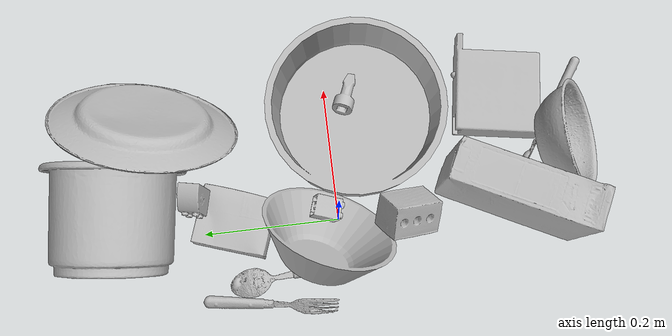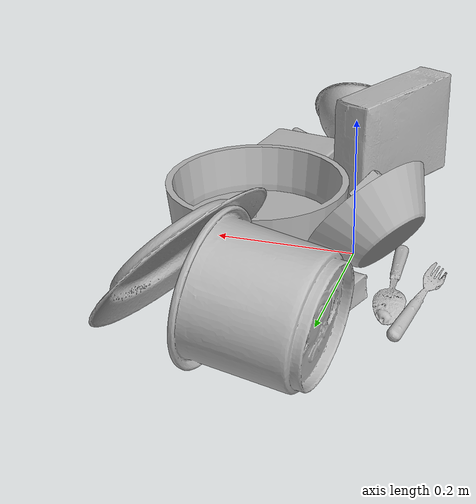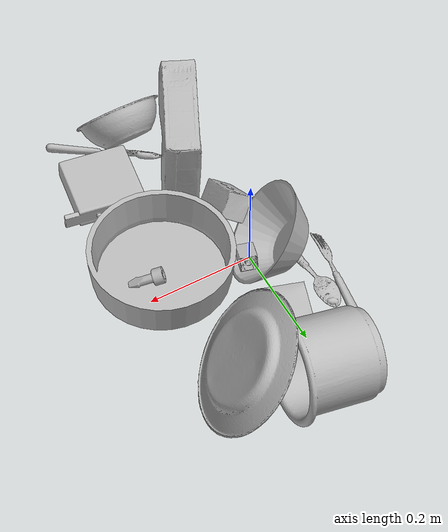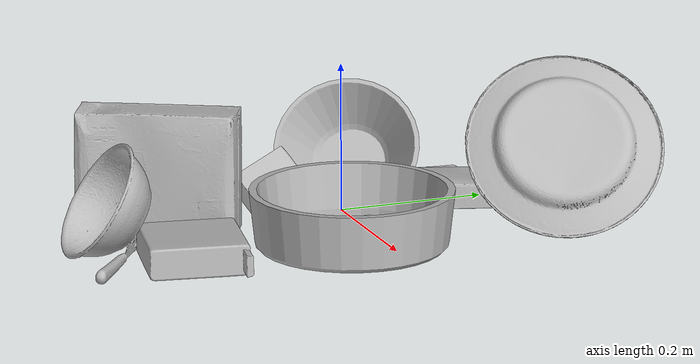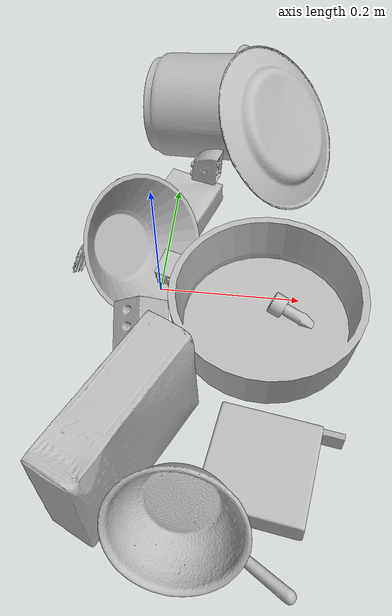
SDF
<sdf version="1.4">
  <world name="default">
    <light name="light1" type="point">
      <pose>0 0 1 0 0 0</pose>
      <diffuse>3 3 3 1</diffuse>
      <specular>3 3 3 1</specular>
    </light>
    <light name="light2" type="point">
      <pose>0 0.5 2 0 0 0</pose>
      <diffuse>1 1 1 1</diffuse>
      <specular>1 1 1 1</specular>
    </light>
    <light name="light3" type="point">
      <pose>0 0.5 2 0 0 0</pose>
      <diffuse>3 3 3 1</diffuse>
      <specular>3 3 3 1</specular>
    </light>
    <scene>
      <ambient>0.7 0.7 0.7</ambient>
    </scene>
    <model name="plate1">
      <link name="link_plate1">
        <collision name="default">
          <geometry>
            <mesh>
              <uri>model://pan_tefal/collision_meshes/collision.obj</uri>
              <scale>1.0 1.0 1.0</scale>
            </mesh>
          </geometry>
          <surface>
            <friction>
              <ode>
                <mu>0.5</mu>
                <mu2>0.5</mu2>
              </ode>
            </friction>
          <contact>
        <ode>
            <max_vel>0</max_vel>
            <min_depth>0.0001</min_depth>
            <kp>1e8</kp>
        </ode>
    </contact></surface>
        </collision>
        <visual name="default">
          <geometry>
            <mesh>
              <uri>model://pan_tefal/visual_meshes/visual.dae</uri>
              <scale>1.0 1.0 1.0</scale>
            </mesh>
          </geometry>
        </visual>
        <inertial>
          <mass>0.7050602436065674</mass>
          <pose>-0.00018002082651946694 3.279098018538207e-05 -0.008514933288097382 0.0008190340203057913 -0.0003301288692481796 -0.3318720847028622</pose>
          <inertia>
            <ixx>0.0048669963</ixx>
            <iyy>0.0048983735</iyy>
            <izz>0.008959204</izz>
            <ixy>0</ixy>
            <ixz>0</ixz>
            <iyz>0</iyz>
          </inertia>
        </inertial>
      </link>
      <pose>0.15449796617031097 -0.04356393218040466 0.03804997727274895 4.793045401877234e-07 5.402214577495185e-07 0.367886557027645</pose>
    </model>
    <model name="plate2">
      <link name="link_plate2">
        <collision name="default">
          <geometry>
            <mesh>
              <uri>model://plate/collision_meshes/collision.obj</uri>
              <scale>1.0 1.0 1.0</scale>
            </mesh>
          </geometry>
          <surface>
            <friction>
              <ode>
                <mu>0.5</mu>
                <mu2>0.5</mu2>
              </ode>
            </friction>
          <contact>
        <ode>
            <max_vel>0</max_vel>
            <min_depth>0.0001</min_depth>
            <kp>1e8</kp>
        </ode>
    </contact></surface>
        </collision>
        <visual name="default">
          <geometry>
            <mesh>
              <uri>model://plate/visual_meshes/visual.dae</uri>
              <scale>1.0 1.0 1.0</scale>
            </mesh>
          </geometry>
        </visual>
        <inertial>
          <mass>0.2442774623632431</mass>
          <pose>-0.0006044568726792932 0.0002782584633678198 -0.0010561984963715076 0.0022187778178748897 -0.0032254919076997847 0.45261061169843664</pose>
          <inertia>
            <ixx>0.0011427345</ixx>
            <iyy>0.001131805</iyy>
            <izz>0.002235018</izz>
            <ixy>0</ixy>
            <ixz>0</ixz>
            <iyz>0</iyz>
          </inertia>
        </inertial>
      </link>
      <pose>0.15935155749320984 0.2521665096282959 0.1084451824426651 -2.3501159005602212 -0.4648491068400832 1.6158126931526966</pose>
    </model>
    <model name="bowl1">
      <link name="link_bowl1">
        <collision name="default">
          <geometry>
            <mesh>
              <uri>model://bowl_a/collision_meshes/collision.obj</uri>
              <scale>1.0 1.0 1.0</scale>
            </mesh>
          </geometry>
          <surface>
            <friction>
              <ode>
                <mu>0.5</mu>
                <mu2>0.5</mu2>
              </ode>
            </friction>
          <contact>
        <ode>
            <max_vel>0</max_vel>
            <min_depth>0.0001</min_depth>
            <kp>1e8</kp>
        </ode>
    </contact></surface>
        </collision>
        <visual name="default">
          <geometry>
            <mesh>
              <uri>model://bowl_a/visual_meshes/visual.dae</uri>
              <scale>1.0 1.0 1.0</scale>
            </mesh>
          </geometry>
        </visual>
        <inertial>
          <mass>0.4025156497955322</mass>
          <pose>0.00027867371682077646 4.731032458948903e-05 -0.0013765298062935472 -0.00098054011869292 -0.0010938175729232503 -0.19123339485915475</pose>
          <inertia>
            <ixx>0.0011459808</ixx>
            <iyy>0.0011530165</iyy>
            <izz>0.0020381706</izz>
            <ixy>0</ixy>
            <ixz>0</ixz>
            <iyz>0</iyz>
          </inertia>
        </inertial>
      </link>
      <pose>-0.03932742401957512 0.02588629722595215 0.06394055485725403 0.7419408583905062 -0.657268993970248 1.6530952697686934</pose>
    </model>
    <model name="bowl2">
      <link name="link_bowl2">
        <collision name="default">
          <geometry>
            <mesh>
              <uri>model://bowl/collision_meshes/collision.obj</uri>
              <scale>1.0 1.0 1.0</scale>
            </mesh>
          </geometry>
          <surface>
            <friction>
              <ode>
                <mu>0.5</mu>
                <mu2>0.5</mu2>
              </ode>
            </friction>
          <contact>
        <ode>
            <max_vel>0</max_vel>
            <min_depth>0.0001</min_depth>
            <kp>1e8</kp>
        </ode>
    </contact></surface>
        </collision>
        <visual name="default">
          <geometry>
            <mesh>
              <uri>model://bowl/visual_meshes/visual.dae</uri>
              <scale>1.0 1.0 1.0</scale>
            </mesh>
          </geometry>
        </visual>
        <inertial>
          <mass>0.04694162309169769</mass>
          <pose>0.00020445318659767509 -0.001030211104080081 -0.0008042642730288208 -0.01576400215318024 0.014546874726031786 0.7140460761636136</pose>
          <inertia>
            <ixx>0.0001078286</ixx>
            <iyy>0.000105419305</iyy>
            <izz>0.00018140484</izz>
            <ixy>0</ixy>
            <ixz>0</ixz>
            <iyz>0</iyz>
          </inertia>
        </inertial>
      </link>
      <pose>0.07475640624761581 -0.33723318576812744 0.057343777269124985 0.07575990045955763 -1.0060313935232845 1.4711819400426145</pose>
    </model>
    <model name="silverware1">
      <link name="link_silverware1">
        <collision name="default">
          <geometry>
            <mesh>
              <uri>model://spoon/collision_meshes/collision.obj</uri>
              <scale>1.0 1.0 1.0</scale>
            </mesh>
          </geometry>
          <surface>
            <friction>
              <ode>
                <mu>0.5</mu>
                <mu2>0.5</mu2>
              </ode>
            </friction>
          <contact>
        <ode>
            <max_vel>0</max_vel>
            <min_depth>0.0001</min_depth>
            <kp>1e8</kp>
        </ode>
    </contact></surface>
        </collision>
        <visual name="default">
          <geometry>
            <mesh>
              <uri>model://spoon/visual_meshes/visual.dae</uri>
              <scale>1.0 1.0 1.0</scale>
            </mesh>
          </geometry>
        </visual>
        <inertial>
          <mass>0.03710600733757019</mass>
          <pose>-0.005526318680495024 -0.0016034168656915426 -0.0007271650829352438 0.03521602429168162 -0.03906583039209626 0.006150612964611125</pose>
          <inertia>
            <ixx>2.0638956e-06</ixx>
            <iyy>0.00014118708</iyy>
            <izz>0.00014220492</izz>
            <ixy>0</ixy>
            <ixz>0</ixz>
            <iyz>0</iyz>
          </inertia>
        </inertial>
      </link>
      <pose>-0.07180674374103546 0.07309913635253906 0.010133267380297184 3.1051382421824174 -0.06198261456000674 1.6638342394234917</pose>
    </model>
    <model name="box1">
      <link name="link_box1">
        <collision name="default">
          <geometry>
            <mesh>
              <uri>model://cracker_box/collision_meshes/collision.obj</uri>
              <scale>1.0 1.0 1.0</scale>
            </mesh>
          </geometry>
          <surface>
            <friction>
              <ode>
                <mu>0.5</mu>
                <mu2>0.5</mu2>
              </ode>
            </friction>
          <contact>
        <ode>
            <max_vel>0</max_vel>
            <min_depth>0.0001</min_depth>
            <kp>1e8</kp>
        </ode>
    </contact></surface>
        </collision>
        <visual name="default">
          <geometry>
            <mesh>
              <uri>model://cracker_box/visual_meshes/visual.dae</uri>
              <scale>1.0 1.0 1.0</scale>
            </mesh>
          </geometry>
        </visual>
        <inertial>
          <mass>2.252173662185669</mass>
          <pose>0.0009464137838222086 0.0002543425071053207 -0.0017029535956680775 -0.000316207513865998 -0.011106489600465836 0.0025467954670329632</pose>
          <inertia>
            <ixx>0.0057285246</ixx>
            <iyy>0.00945892</iyy>
            <izz>0.013498746</izz>
            <ixy>0</ixy>
            <ixz>0</ixz>
            <iyz>0</iyz>
          </inertia>
        </inertial>
      </link>
      <pose>0.002561542671173811 -0.25451186299324036 0.08175766468048096 1.5452334517392292 0.009040053528328675 1.1164027643296441</pose>
    </model>
    <model name="box2">
      <link name="link_box2">
        <collision name="default">
          <geometry>
            <mesh>
              <uri>model://pudding_box/collision_meshes/collision.obj</uri>
              <scale>1.0 1.0 1.0</scale>
            </mesh>
          </geometry>
          <surface>
            <friction>
              <ode>
                <mu>0.5</mu>
                <mu2>0.5</mu2>
              </ode>
            </friction>
          <contact>
        <ode>
            <max_vel>0</max_vel>
            <min_depth>0.0001</min_depth>
            <kp>1e8</kp>
        </ode>
    </contact></surface>
        </collision>
        <visual name="default">
          <geometry>
            <mesh>
              <uri>model://pudding_box/visual_meshes/visual.dae</uri>
              <scale>1.0 1.0 1.0</scale>
            </mesh>
          </geometry>
        </visual>
        <inertial>
          <mass>0.38795164227485657</mass>
          <pose>0.0004894821904599667 0.0008067885646596551 -0.0005188827635720372 0.005213102258195884 -0.006603798723254801 0.020079825158131615</pose>
          <inertia>
            <ixx>0.00043855933</ixx>
            <iyy>0.00029506587</iyy>
            <izz>0.0006476475</izz>
            <ixy>0</ixy>
            <ixz>0</ixz>
            <iyz>0</iyz>
          </inertia>
        </inertial>
      </link>
      <pose>0.012963024899363518 0.15225249528884888 0.01868288218975067 3.1403612019218605 -0.00436237251028837 -0.32710545628540816</pose>
    </model>
    <model name="cup1">
      <link name="link_cup1">
        <collision name="default">
          <geometry>
            <mesh>
              <uri>model://i_cups/collision_meshes/collision.obj</uri>
              <scale>2.0 2.0 2.0</scale>
            </mesh>
          </geometry>
          <surface>
            <friction>
              <ode>
                <mu>0.5</mu>
                <mu2>0.5</mu2>
              </ode>
            </friction>
          <contact>
        <ode>
            <max_vel>0</max_vel>
            <min_depth>0.0001</min_depth>
            <kp>1e8</kp>
        </ode>
    </contact></surface>
        </collision>
        <visual name="default">
          <geometry>
            <mesh>
              <uri>model://i_cups/visual_meshes/visual.dae</uri>
              <scale>2.0 2.0 2.0</scale>
            </mesh>
          </geometry>
        </visual>
        <inertial>
          <mass>0.8781275153160095</mass>
          <pose>0.00022480404004454613 0.0003359464171808213 -0.0017158013070002198 -0.028983801808433914 -0.03987279960401974 -0.34589629987983705</pose>
          <inertia>
            <ixx>0.004863122</ixx>
            <iyy>0.004905971</iyy>
            <izz>0.005435325</izz>
            <ixy>0</ixy>
            <ixz>0</ixz>
            <iyz>0</iyz>
          </inertia>
        </inertial>
      </link>
      <pose>0.025642385706305504 0.3108798861503601 0.08955961465835571 1.445444132886348 0.21164968140774285 1.4201449760598406</pose>
    </model>
    <model name="silverware2">
      <link name="link_silverware2">
        <collision name="default">
          <geometry>
            <mesh>
              <uri>model://fork/collision_meshes/collision.obj</uri>
              <scale>1.0 1.0 1.0</scale>
            </mesh>
          </geometry>
          <surface>
            <friction>
              <ode>
                <mu>0.5</mu>
                <mu2>0.5</mu2>
              </ode>
            </friction>
          <contact>
        <ode>
            <max_vel>0</max_vel>
            <min_depth>0.0001</min_depth>
            <kp>1e8</kp>
        </ode>
    </contact></surface>
        </collision>
        <visual name="default">
          <geometry>
            <mesh>
              <uri>model://fork/visual_meshes/visual.dae</uri>
              <scale>1.0 1.0 1.0</scale>
            </mesh>
          </geometry>
        </visual>
        <inertial>
          <mass>0.027322283014655113</mass>
          <pose>-0.02957003377377987 0.0004658822435885668 0.0003218860656488687 -0.013551502868568713 -0.01097783467120204 0.01445389601768567</pose>
          <inertia>
            <ixx>9.578007e-07</ixx>
            <iyy>7.133063e-05</iyy>
            <izz>7.175903e-05</izz>
            <ixy>0</ixy>
            <ixz>0</ixz>
            <iyz>0</iyz>
          </inertia>
        </inertial>
      </link>
      <pose>-0.1131925880908966 0.11195322126150131 0.009721965529024601 -2.4986346135575643 -0.0205842638675604 -1.7284425110249477</pose>
    </model>
    <model name="silverware3">
      <link name="link_silverware3">
        <collision name="default">
          <geometry>
            <mesh>
              <uri>model://knife/collision_meshes/collision.obj</uri>
              <scale>1.0 1.0 1.0</scale>
            </mesh>
          </geometry>
          <surface>
            <friction>
              <ode>
                <mu>0.5</mu>
                <mu2>0.5</mu2>
              </ode>
            </friction>
          <contact>
        <ode>
            <max_vel>0</max_vel>
            <min_depth>0.0001</min_depth>
            <kp>1e8</kp>
        </ode>
    </contact></surface>
        </collision>
        <visual name="default">
          <geometry>
            <mesh>
              <uri>model://knife/visual_meshes/visual.dae</uri>
              <scale>1.0 1.0 1.0</scale>
            </mesh>
          </geometry>
        </visual>
        <inertial>
          <mass>0.036400385200977325</mass>
          <pose>-0.02378525584936142 0.0015275126788765192 5.0620175898075104e-05 0.07305876248658423 0.017248417790611748 -0.007409819472147862</pose>
          <inertia>
            <ixx>1.0331904e-06</ixx>
            <iyy>0.00013984439</iyy>
            <izz>0.00014017712</izz>
            <ixy>0</ixy>
            <ixz>0</ixz>
            <iyz>0</iyz>
          </inertia>
        </inertial>
      </link>
      <pose>0.11647476255893707 -0.33481934666633606 0.009700302965939045 -1.4468584862099878 0.012642634605868999 2.5522749547077193</pose>
    </model>
    <model name="toy1">
      <link name="link_toy1">
        <collision name="default">
          <geometry>
            <mesh>
              <uri>model://d_lego_duplo/collision_meshes/collision.obj</uri>
              <scale>1.0 1.0 1.0</scale>
            </mesh>
          </geometry>
          <surface>
            <friction>
              <ode>
                <mu>0.5</mu>
                <mu2>0.5</mu2>
              </ode>
            </friction>
          <contact>
        <ode>
            <max_vel>0</max_vel>
            <min_depth>0.0001</min_depth>
            <kp>1e8</kp>
        </ode>
    </contact></surface>
        </collision>
        <visual name="default">
          <geometry>
            <mesh>
              <uri>model://d_lego_duplo/visual_meshes/visual.dae</uri>
              <scale>1.0 1.0 1.0</scale>
            </mesh>
          </geometry>
        </visual>
        <inertial>
          <mass>0.060466669499874115</mass>
          <pose>0.002830563113093376 0.00016366162162739784 0.0008589806384406984 0.08010949306805684 -0.3835523000845375 0.0010296676643477064</pose>
          <inertia>
            <ixx>1.1705457e-05</ixx>
            <iyy>1.6613216e-05</iyy>
            <izz>1.6021117e-05</izz>
            <ixy>0</ixy>
            <ixz>0</ixz>
            <iyz>0</iyz>
          </inertia>
        </inertial>
      </link>
      <pose>0.04380636662244797 0.20546360313892365 0.05942811071872711 1.4003970335790423 1.3835525888064255 -1.965357831337405</pose>
    </model>
    <model name="toy2">
      <link name="link_toy2">
        <collision name="default">
          <geometry>
            <mesh>
              <uri>model://b_lego_duplo/collision_meshes/collision.obj</uri>
              <scale>1.0 1.0 1.0</scale>
            </mesh>
          </geometry>
          <surface>
            <friction>
              <ode>
                <mu>0.5</mu>
                <mu2>0.5</mu2>
              </ode>
            </friction>
          <contact>
        <ode>
            <max_vel>0</max_vel>
            <min_depth>0.0001</min_depth>
            <kp>1e8</kp>
        </ode>
    </contact></surface>
        </collision>
        <visual name="default">
          <geometry>
            <mesh>
              <uri>model://b_lego_duplo/visual_meshes/visual.dae</uri>
              <scale>1.0 1.0 1.0</scale>
            </mesh>
          </geometry>
        </visual>
        <inertial>
          <mass>0.030077241361141205</mass>
          <pose>-0.00011053079651901498 -9.15232340048533e-06 0.0019294286612421274 -0.037494862621914114 -0.026354003688684128 0.4518993950044185</pose>
          <inertia>
            <ixx>6.155532e-06</ixx>
            <iyy>6.196912e-06</iyy>
            <izz>5.4843786e-06</izz>
            <ixy>0</ixy>
            <ixz>0</ixz>
            <iyz>0</iyz>
          </inertia>
        </inertial>
      </link>
      <pose>0.014217949472367764 0.014331997372210026 0.030462780967354774 -1.8141004633261986 -0.031119361535715314 2.8385165581579037</pose>
    </model>
    <model name="toy3">
      <link name="link_toy3">
        <collision name="default">
          <geometry>
            <mesh>
              <uri>model://nine_hole_peg_test/collision_meshes/collision.obj</uri>
              <scale>1.0 1.0 1.0</scale>
            </mesh>
          </geometry>
          <surface>
            <friction>
              <ode>
                <mu>0.5</mu>
                <mu2>0.5</mu2>
              </ode>
            </friction>
          <contact>
        <ode>
            <max_vel>0</max_vel>
            <min_depth>0.0001</min_depth>
            <kp>1e8</kp>
        </ode>
    </contact></surface>
        </collision>
        <visual name="default">
          <geometry>
            <mesh>
              <uri>model://nine_hole_peg_test/visual_meshes/visual.dae</uri>
              <scale>1.0 1.0 1.0</scale>
            </mesh>
          </geometry>
        </visual>
        <inertial>
          <mass>0.9411391019821167</mass>
          <pose>-0.0046173869632184505 -0.009647615253925323 2.646069333422929e-05 -0.0014666795036135398 0.0007194176186147546 -0.6342417663820423</pose>
          <inertia>
            <ixx>0.0014716258</ixx>
            <iyy>0.0013740414</iyy>
            <izz>0.0025787223</izz>
            <ixy>0</ixy>
            <ixz>0</ixz>
            <iyz>0</iyz>
          </inertia>
        </inertial>
      </link>
      <pose>0.1709320992231369 -0.2559414505958557 0.020791001617908478 3.141592617003648 1.0494460605938794e-06 1.4027567671742087</pose>
    </model>
    <model name="toy4">
      <link name="link_toy4">
        <collision name="default">
          <geometry>
            <mesh>
              <uri>model://foam_brick/collision_meshes/collision.obj</uri>
              <scale>1.0 1.0 1.0</scale>
            </mesh>
          </geometry>
          <surface>
            <friction>
              <ode>
                <mu>0.5</mu>
                <mu2>0.5</mu2>
              </ode>
            </friction>
          <contact>
        <ode>
            <max_vel>0</max_vel>
            <min_depth>0.0001</min_depth>
            <kp>1e8</kp>
        </ode>
    </contact></surface>
        </collision>
        <visual name="default">
          <geometry>
            <mesh>
              <uri>model://foam_brick/visual_meshes/visual.dae</uri>
              <scale>1.0 1.0 1.0</scale>
            </mesh>
          </geometry>
        </visual>
        <inertial>
          <mass>0.1527709662914276</mass>
          <pose>-0.00025224717683158815 0.0003458428254816681 -0.00025321016437374055 -0.29402015796081304 0.017274438268763303 -0.0007449889855682301</pose>
          <inertia>
            <ixx>6.673321e-05</ixx>
            <iyy>0.00010654301</iyy>
            <izz>0.00010789704</izz>
            <ixy>0</ixy>
            <ixz>0</ixz>
            <iyz>0</iyz>
          </inertia>
        </inertial>
      </link>
      <pose>-0.007517493329942226 -0.10037142038345337 0.048224274069070816 -0.727037992247248 -0.4330855219145578 1.683847911633358</pose>
    </model>
    <model name="toy5">
      <link name="link_toy5">
        <collision name="default">
          <geometry>
            <mesh>
              <uri>model://e_toy_airplane/collision_meshes/collision.obj</uri>
              <scale>1.0 1.0 1.0</scale>
            </mesh>
          </geometry>
          <surface>
            <friction>
              <ode>
                <mu>0.5</mu>
                <mu2>0.5</mu2>
              </ode>
            </friction>
          <contact>
        <ode>
            <max_vel>0</max_vel>
            <min_depth>0.0001</min_depth>
            <kp>1e8</kp>
        </ode>
    </contact></surface>
        </collision>
        <visual name="default">
          <geometry>
            <mesh>
              <uri>model://e_toy_airplane/visual_meshes/visual.dae</uri>
              <scale>1.0 1.0 1.0</scale>
            </mesh>
          </geometry>
        </visual>
        <inertial>
          <mass>0.01976589486002922</mass>
          <pose>0.00011740453192032874 -2.2483010980067775e-05 -0.011187207885086536 0.005518504435964777 0.009228288570086122 0.15041432989491213</pose>
          <inertia>
            <ixx>6.0327766e-06</ixx>
            <iyy>5.971064e-06</iyy>
            <izz>1.813087e-06</izz>
            <ixy>0</ixy>
            <ixz>0</ixz>
            <iyz>0</iyz>
          </inertia>
        </inertial>
      </link>
      <pose>0.19038143754005432 -0.035277415066957474 0.017865300178527832 2.4517624622366956 -1.1866353477557403 0.36396006551556054</pose>
    </model>
  <physics type="ode">
      <max_contacts>50</max_contacts>
      <ode>
        <solver>
          <type>quick</type>
          <iters>75</iters>
        </solver>
        <constraints>
          <contact_max_correcting_vel>0</contact_max_correcting_vel>
          <contact_surface_layer>0</contact_surface_layer>
        </constraints>
      </ode>
    </physics></world>
</sdf>
